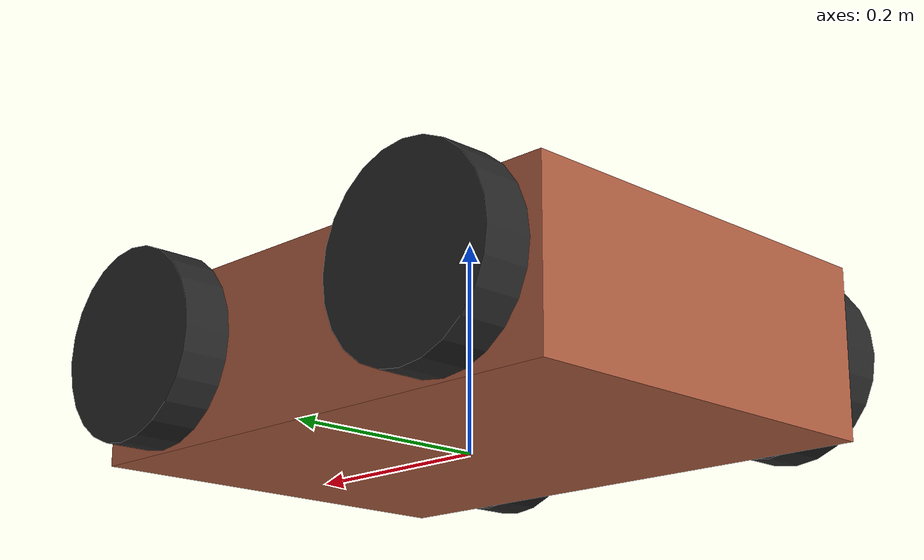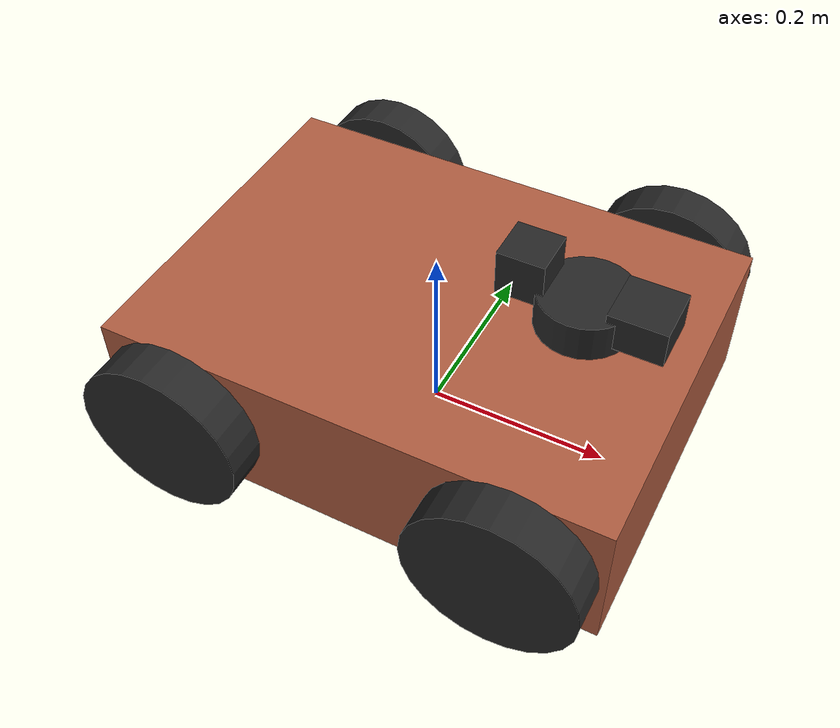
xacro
<?xml version="1.0"?>
<robot xmlns:xacro="http://www.ros.org/wiki/xacro" name="mars_rover">
  <xacro:property name="base_l" value="0.55"/>
  <xacro:property name="base_w" value="0.40"/>
  <xacro:property name="base_h" value="0.16"/>
  <xacro:property name="wheel_r" value="0.09"/>
  <xacro:property name="wheel_w" value="0.045"/>

  <material name="chassis_mat"><color rgba="0.68 0.36 0.25 1"/></material>
  <material name="wheel_mat"><color rgba="0.15 0.15 0.15 1"/></material>

  <link name="base_link">
    <inertial>
      <mass value="18.0"/>
      <origin xyz="0 0 0"/>
      <inertia ixx="0.8" ixy="0" ixz="0" iyy="1.2" iyz="0" izz="1.6"/>
    </inertial>
    <visual>
      <origin xyz="0 0 ${base_h/2}"/>
      <geometry><box size="${base_l} ${base_w} ${base_h}"/></geometry>
      <material name="chassis_mat"/>
    </visual>
    <collision>
      <origin xyz="0 0 ${base_h/2}"/>
      <geometry><box size="${base_l} ${base_w} ${base_h}"/></geometry>
    </collision>
  </link>

  <xacro:macro name="wheel" params="name x y">
    <link name="${name}">
      <inertial><mass value="2.0"/><origin xyz="0 0 0"/>
        <inertia ixx="0.01" ixy="0" ixz="0" iyy="0.01" iyz="0" izz="0.02"/>
      </inertial>
      <visual>
        <origin xyz="0 0 0" rpy="1.5708 0 0"/>
        <geometry><cylinder radius="${wheel_r}" length="${wheel_w}"/></geometry>
        <material name="wheel_mat"/>
      </visual>
      <collision>
        <origin xyz="0 0 0" rpy="1.5708 0 0"/>
        <geometry><cylinder radius="${wheel_r}" length="${wheel_w}"/></geometry>
      </collision>
    </link>
    <joint name="${name}_joint" type="continuous">
      <parent link="base_link"/>
      <child link="${name}"/>
      <origin xyz="${x} ${y} ${wheel_r}"/>
      <axis xyz="0 1 0"/>
    </joint>
  </xacro:macro>

  <xacro:wheel name="front_left_wheel" x="0.18" y="0.23"/>
  <xacro:wheel name="front_right_wheel" x="0.18" y="-0.23"/>
  <xacro:wheel name="rear_left_wheel" x="-0.18" y="0.23"/>
  <xacro:wheel name="rear_right_wheel" x="-0.18" y="-0.23"/>

  <link name="imu_link"/>
  <joint name="imu_joint" type="fixed">
    <parent link="base_link"/>
    <child link="imu_link"/>
    <origin xyz="0 0 ${base_h + 0.03}"/>
  </joint>

  <link name="lidar_link">
    <visual>
      <origin xyz="0 0 0"/>
      <geometry><cylinder radius="0.05" length="0.04"/></geometry>
      <material name="wheel_mat"/>
    </visual>
  </link>
  <joint name="lidar_joint" type="fixed">
    <parent link="base_link"/>
    <child link="lidar_link"/>
    <origin xyz="0.16 0 ${base_h + 0.05}"/>
  </joint>

  <link name="gps_link"/>
  <joint name="gps_joint" type="fixed">
    <parent link="base_link"/>
    <child link="gps_link"/>
    <origin xyz="-0.10 0 ${base_h + 0.08}"/>
  </joint>

  <link name="depth_camera_link">
    <visual>
      <geometry><box size="0.05 0.05 0.05"/></geometry>
      <material name="wheel_mat"/>
    </visual>
  </link>
  <joint name="depth_camera_joint" type="fixed">
    <parent link="base_link"/>
    <child link="depth_camera_link"/>
    <origin xyz="0.10 0 ${base_h + 0.08}"/>
  </joint>

  <link name="ultrasonic_link"/>
  <joint name="ultrasonic_joint" type="fixed">
    <parent link="base_link"/>
    <child link="ultrasonic_link"/>
    <origin xyz="0.28 0 ${base_h + 0.02}"/>
  </joint>

  <link name="camera_link">
    <visual>
      <geometry><box size="0.06 0.06 0.04"/></geometry>
      <material name="wheel_mat"/>
    </visual>
  </link>
  <joint name="camera_joint" type="fixed">
    <parent link="base_link"/>
    <child link="camera_link"/>
    <origin xyz="0.22 0 ${base_h + 0.06}"/>
  </joint>

  <gazebo>
    <plugin name="diff_drive" filename="libgazebo_ros_diff_drive.so">
      <left_joint>front_left_wheel_joint</left_joint>
      <left_joint>rear_left_wheel_joint</left_joint>
      <right_joint>front_right_wheel_joint</right_joint>
      <right_joint>rear_right_wheel_joint</right_joint>
      <wheel_separation>0.46</wheel_separation>
      <wheel_diameter>${2*wheel_r}</wheel_diameter>
      <command_topic>cmd_vel</command_topic>
      <odometry_topic>odom</odometry_topic>
      <odometry_frame>odom</odometry_frame>
      <robot_base_frame>base_link</robot_base_frame>
      <publish_odom>true</publish_odom>
      <publish_wheel_tf>true</publish_wheel_tf>
      <update_rate>50</update_rate>
    </plugin>
  </gazebo>

  <gazebo reference="imu_link">
    <sensor type="imu" name="imu_sensor">
      <always_on>true</always_on>
      <update_rate>100</update_rate>
      <plugin name="imu_plugin" filename="libgazebo_ros_imu_sensor.so">
        <topicName>imu/data</topicName>
        <bodyName>imu_link</bodyName>
        <frameName>imu_link</frameName>
      </plugin>
    </sensor>
  </gazebo>

  <gazebo reference="lidar_link">
    <sensor type="ray" name="scan_sensor">
      <update_rate>12</update_rate>
      <ray>
        <scan>
          <horizontal>
            <samples>720</samples>
            <min_angle>-1.5708</min_angle>
            <max_angle>1.5708</max_angle>
          </horizontal>
        </scan>
        <range>
          <min>0.12</min>
          <max>12.0</max>
        </range>
      </ray>
      <plugin name="laser_plugin" filename="libgazebo_ros_laser.so">
        <topicName>scan</topicName>
        <frameName>lidar_link</frameName>
      </plugin>
    </sensor>
  </gazebo>

  <gazebo reference="camera_link">
    <sensor type="camera" name="front_camera">
      <update_rate>20</update_rate>
      <camera>
        <horizontal_fov>1.396</horizontal_fov>
        <image>
          <width>640</width>
          <height>480</height>
          <format>R8G8B8</format>
        </image>
        <clip>
          <near>0.1</near>
          <far>40.0</far>
        </clip>
      </camera>
      <plugin name="camera_plugin" filename="libgazebo_ros_camera.so">
        <cameraName>rgb</cameraName>
        <imageTopicName>image_raw</imageTopicName>
        <cameraInfoTopicName>camera_info</cameraInfoTopicName>
        <frameName>camera_link</frameName>
      </plugin>
    </sensor>
  </gazebo>

  <gazebo reference="gps_link">
    <sensor type="gps" name="gps_sensor">
      <always_on>true</always_on>
      <update_rate>10</update_rate>
      <plugin name="gps_plugin" filename="libgazebo_ros_gps.so">
        <robotNamespace>/</robotNamespace>
        <bodyName>gps_link</bodyName>
        <topicName>gps/fix</topicName>
        <frameName>gps_link</frameName>
      </plugin>
    </sensor>
  </gazebo>

  <gazebo reference="depth_camera_link">
    <sensor type="depth" name="depth_camera">
      <update_rate>15</update_rate>
      <camera>
        <horizontal_fov>1.2</horizontal_fov>
        <image>
          <width>320</width>
          <height>240</height>
          <format>R8G8B8</format>
        </image>
        <clip>
          <near>0.12</near>
          <far>15.0</far>
        </clip>
      </camera>
      <plugin name="depth_camera_plugin" filename="libgazebo_ros_openni_kinect.so">
        <cameraName>depth</cameraName>
        <imageTopicName>image_raw</imageTopicName>
        <depthImageTopicName>depth/image_raw</depthImageTopicName>
        <depthImageCameraInfoTopicName>depth/camera_info</depthImageCameraInfoTopicName>
        <pointCloudTopicName>depth/points</pointCloudTopicName>
        <frameName>depth_camera_link</frameName>
      </plugin>
    </sensor>
  </gazebo>

  <gazebo reference="ultrasonic_link">
    <sensor type="ray" name="ultrasonic_front">
      <update_rate>20</update_rate>
      <ray>
        <scan>
          <horizontal>
            <samples>30</samples>
            <min_angle>-0.25</min_angle>
            <max_angle>0.25</max_angle>
          </horizontal>
        </scan>
        <range>
          <min>0.05</min>
          <max>4.0</max>
          <resolution>0.01</resolution>
        </range>
      </ray>
      <plugin name="ultrasonic_plugin" filename="libgazebo_ros_range.so">
        <topicName>ultrasonic/range</topicName>
        <frameName>ultrasonic_link</frameName>
        <radiation>ultrasound</radiation>
        <fov>0.5</fov>
      </plugin>
    </sensor>
  </gazebo>

</robot>
